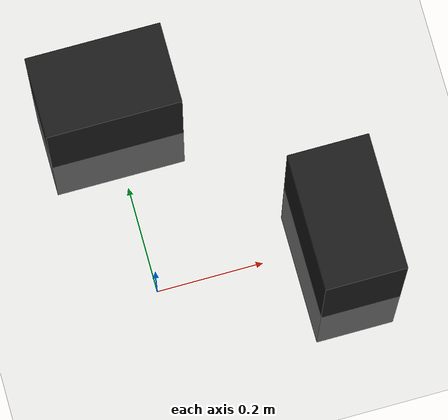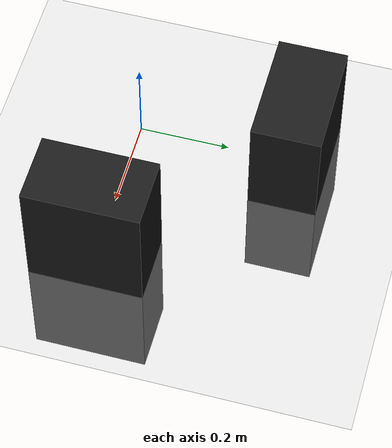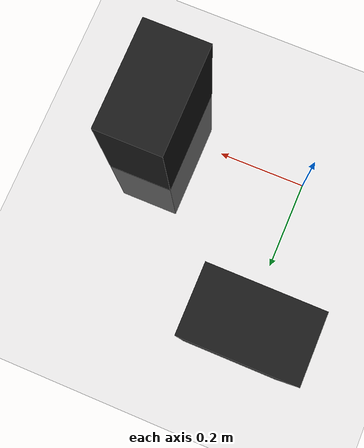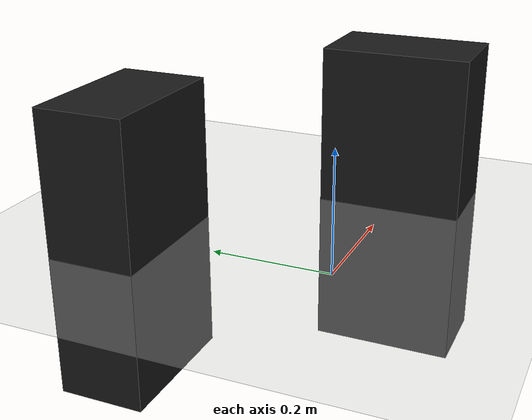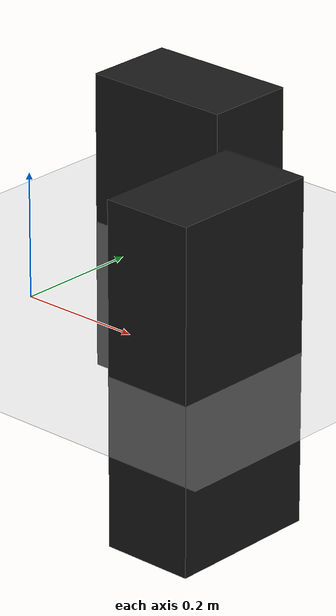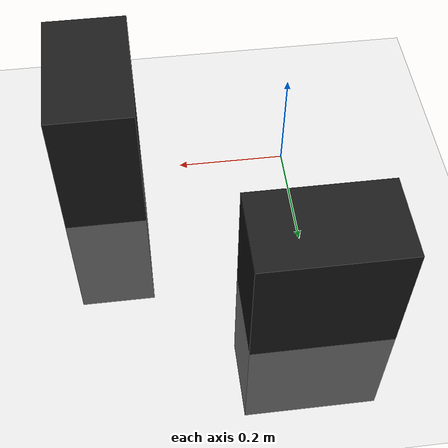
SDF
<?xml version="1.0"?>
<sdf version="1.8">
  <world name="ign_moveit2_move_object_world">

    <!-- Physics -->
    <plugin filename="ignition-gazebo-physics-system" name="ignition::gazebo::systems::Physics">
      <engine>
        <filename>ignition-physics-dartsim-plugin</filename>
      </engine>
      <dart>
        <collision_detector>bullet</collision_detector>
      </dart>
    </plugin>
    <physics name="physics_config" type="dart">
      <max_step_size>0.005</max_step_size>
      <real_time_factor>1.0</real_time_factor>
    </physics>

    <!-- Scene -->
    <plugin filename="ignition-gazebo-scene-broadcaster-system" name="ignition::gazebo::systems::SceneBroadcaster">
    </plugin>
    <scene>
      <ambient>0.8 0.8 0.8</ambient>
      <grid>false</grid>
    </scene>

    <!-- User Commands (transform control) -->
    <plugin filename="ignition-gazebo-user-commands-system" name="ignition::gazebo::systems::UserCommands">
    </plugin>

    <!-- Illumination -->
    <light type="directional" name="sun">
      <cast_shadows>true</cast_shadows>
      <pose>0 0 10 0 0 0</pose>
      <diffuse>0.8 0.8 0.8 1</diffuse>
      <specular>0.2 0.2 0.2 1</specular>
      <attenuation>
        <range>1000</range>
        <constant>0.9</constant>
        <linear>0.01</linear>
        <quadratic>0.001</quadratic>
      </attenuation>
      <direction>-0.3 0.3 -0.9</direction>
    </light>

    <!-- Models -->
    <!-- Ground -->
    <model name="ground_plane">
      <pose>0 0 0 0 0 0</pose>
      <static>true</static>
      <link name="ground_plane_link">
        <collision name="ground_plane_collision">
          <geometry>
            <plane>
              <normal>0 0 1</normal>
            </plane>
          </geometry>
        </collision>
        <visual name="ground_plane_visual">
          <geometry>
            <plane>
              <normal>0 0 1</normal>
              <size>4 4</size>
            </plane>
          </geometry>
          <material>
            <diffuse>0.8 0.8 0.8 1</diffuse>
            <specular>0.8 0.8 0.8 1</specular>
          </material>
        </visual>
      </link>
    </model>

    <!-- Table 1 -->
    <model name="table1">
      <static>true</static>
      <pose>0.35 0.0 0.0 0.0 0.0 0.0</pose>
      <link name="table1_link">
        <visual name="table1_visual">
          <cast_shadows>false</cast_shadows>
          <geometry>
            <box>
              <size>0.15 0.25 0.55</size>
            </box>
          </geometry>
          <material>
            <diffuse>0.1 0.1 0.1 1</diffuse>
            <specular>0.4 0.4 0.4 1</specular>
          </material>
        </visual>
      </link>
    </model>

    <!-- Table 2 -->
    <model name="table2">
      <static>true</static>
      <pose>0.0 0.35 0.0 0.0 0.0 0.0</pose>
      <link name="table2_link">
        <visual name="table2_visual">
          <cast_shadows>false</cast_shadows>
          <geometry>
            <box>
              <size>0.25 0.15 0.49</size>
            </box>
          </geometry>
          <material>
            <diffuse>0.1 0.1 0.1 1</diffuse>
            <specular>0.4 0.4 0.4 1</specular>
          </material>
        </visual>
      </link>
    </model>

    <!-- Static target -->

  </world>
</sdf>
